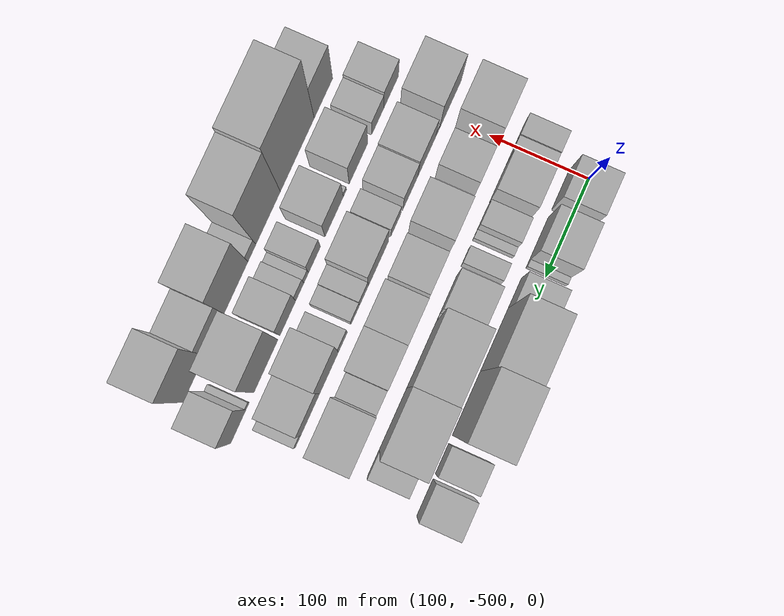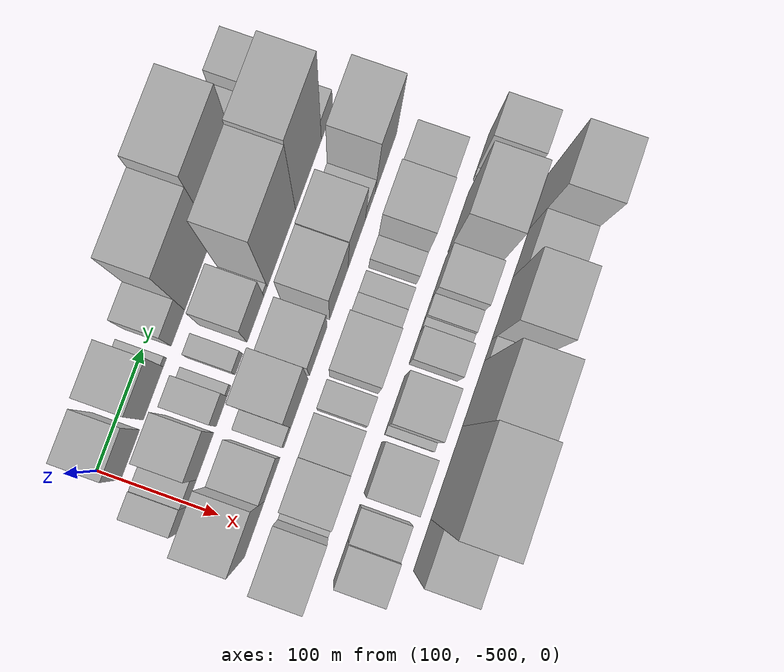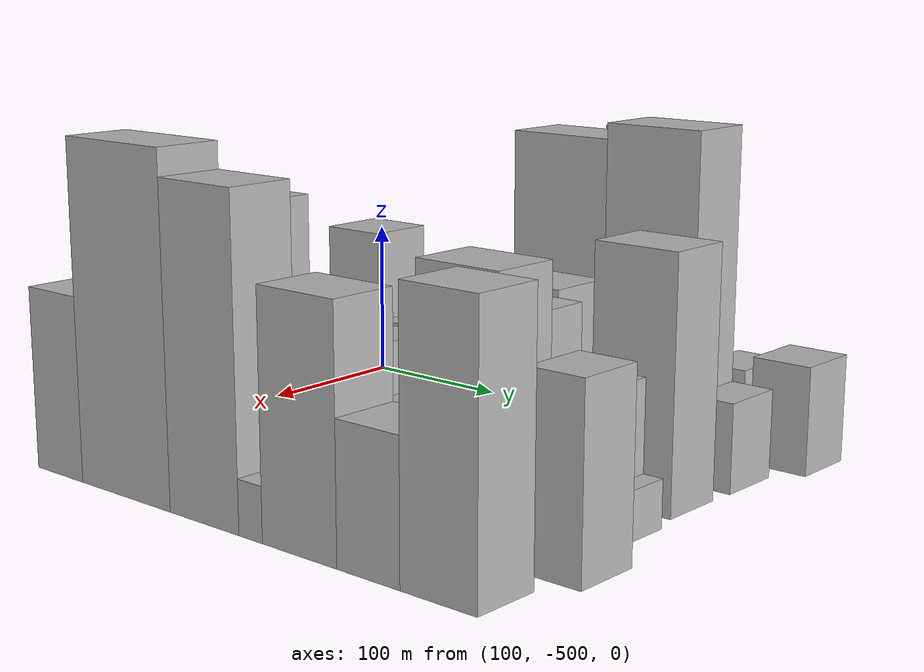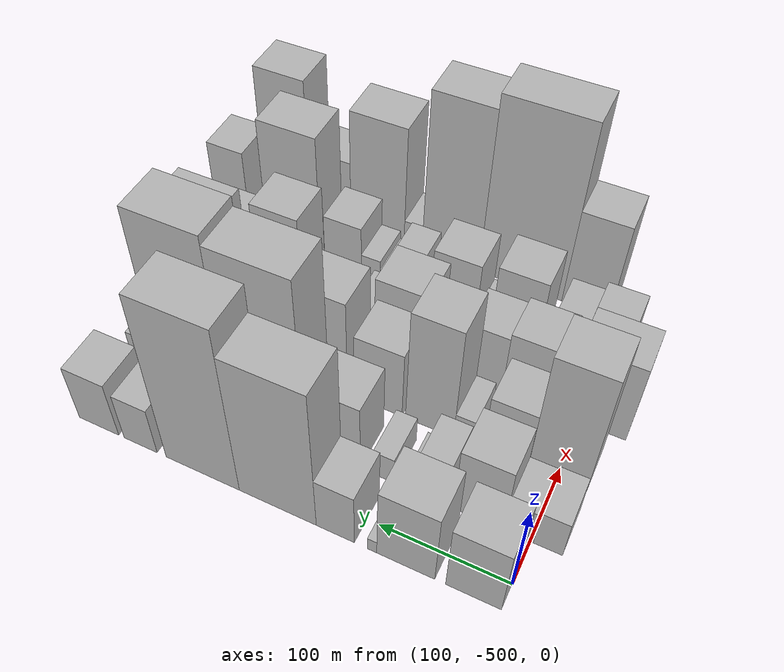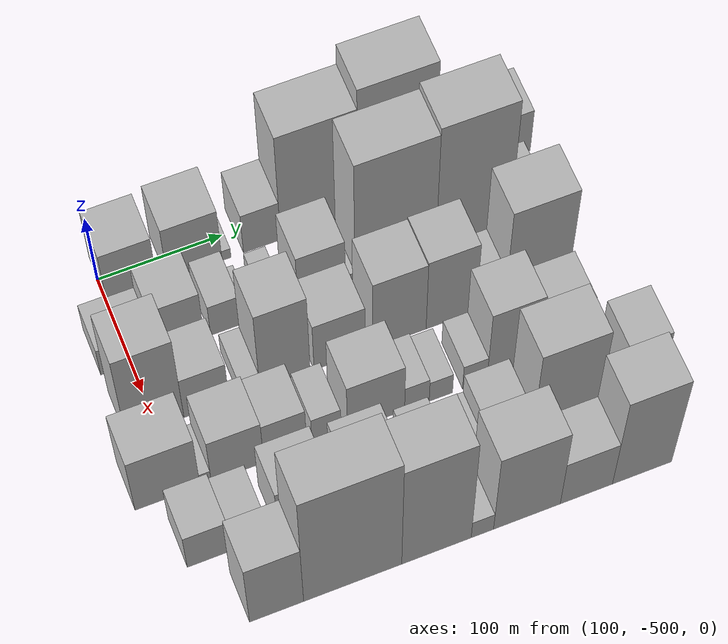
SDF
<sdf version="1.6">
 <world name="default">
  <model name="building_15">
   <static>1</static>
   <pose>100.0000 -479.6449 0 0.000000 0.000000 0.000000</pose>
   <link name="link">
    <pose>0 0 37.50 0 0 0</pose>
    <collision name="collision"><geometry><box><size>40.0000 40.5102 75.0000</size></box></geometry></collision>
    <visual name="visual">
     <cast_shadows>0</cast_shadows>
     <geometry><box><size>40.0000 40.5102 75.0000</size></box></geometry>
     <material>
      <script>
       <uri>model://HANNAS_wall/materials/scripts</uri>
       <uri>model://HANNAS_wall/materials/textures</uri>
       <name>vrc/HANNAS_wall</name>
      </script>
     </material>
    </visual>
   </link>
  </model>
  <model name="building_16">
   <static>1</static>
   <pose>100.0000 -429.4630 0 0.000000 0.000000 0.000000</pose>
   <link name="link">
    <pose>0 0 40.50 0 0 0</pose>
    <collision name="collision"><geometry><box><size>40.0000 43.8536 81.0000</size></box></geometry></collision>
    <visual name="visual">
     <cast_shadows>0</cast_shadows>
     <geometry><box><size>40.0000 43.8536 81.0000</size></box></geometry>
     <material>
      <script>
       <uri>model://HANNAS_wall/materials/scripts</uri>
       <uri>model://HANNAS_wall/materials/textures</uri>
       <name>vrc/HANNAS_wall</name>
      </script>
     </material>
    </visual>
   </link>
  </model>
  <model name="building_17">
   <static>1</static>
   <pose>100.0000 -403.8971 0 0.000000 0.000000 0.000000</pose>
   <link name="link">
    <pose>0 0 7.50 0 0 0</pose>
    <collision name="collision"><geometry><box><size>40.0000 7.2782 15.0000</size></box></geometry></collision>
    <visual name="visual">
     <cast_shadows>0</cast_shadows>
     <geometry><box><size>40.0000 7.2782 15.0000</size></box></geometry>
     <material>
      <script>
       <uri>model://HANNAS_wall/materials/scripts</uri>
       <uri>model://HANNAS_wall/materials/textures</uri>
       <name>vrc/HANNAS_wall</name>
      </script>
     </material>
    </visual>
   </link>
  </model>
  <model name="building_18">
   <static>1</static>
   <pose>100.0000 -375.1844 0 0.000000 0.000000 0.000000</pose>
   <link name="link">
    <pose>0 0 30.00 0 0 0</pose>
    <collision name="collision"><geometry><box><size>40.0000 30.1471 60.0000</size></box></geometry></collision>
    <visual name="visual">
     <cast_shadows>0</cast_shadows>
     <geometry><box><size>40.0000 30.1471 60.0000</size></box></geometry>
     <material>
      <script>
       <uri>model://HANNAS_wall/materials/scripts</uri>
       <uri>model://HANNAS_wall/materials/textures</uri>
       <name>vrc/HANNAS_wall</name>
      </script>
     </material>
    </visual>
   </link>
  </model>
  <model name="building_19">
   <static>1</static>
   <pose>100.0000 -328.5099 0 0.000000 0.000000 0.000000</pose>
   <link name="link">
    <pose>0 0 79.50 0 0 0</pose>
    <collision name="collision"><geometry><box><size>40.0000 63.2020 159.0000</size></box></geometry></collision>
    <visual name="visual">
     <cast_shadows>0</cast_shadows>
     <geometry><box><size>40.0000 63.2020 159.0000</size></box></geometry>
     <material>
      <script>
       <uri>model://HANNAS_wall/materials/scripts</uri>
       <uri>model://HANNAS_wall/materials/textures</uri>
       <name>vrc/HANNAS_wall</name>
      </script>
     </material>
    </visual>
   </link>
  </model>
  <model name="building_20">
   <static>1</static>
   <pose>100.0000 -265.2148 0 0.000000 0.000000 0.000000</pose>
   <link name="link">
    <pose>0 0 93.00 0 0 0</pose>
    <collision name="collision"><geometry><box><size>40.0000 63.3882 186.0000</size></box></geometry></collision>
    <visual name="visual">
     <cast_shadows>0</cast_shadows>
     <geometry><box><size>40.0000 63.3882 186.0000</size></box></geometry>
     <material>
      <script>
       <uri>model://HANNAS_wall/materials/scripts</uri>
       <uri>model://HANNAS_wall/materials/textures</uri>
       <name>vrc/HANNAS_wall</name>
      </script>
     </material>
    </visual>
   </link>
  </model>
  <model name="building_21">
   <static>1</static>
   <pose>100.0000 -210.6596 0 0.000000 0.000000 0.000000</pose>
   <link name="link">
    <pose>0 0 27.00 0 0 0</pose>
    <collision name="collision"><geometry><box><size>40.0000 29.7221 54.0000</size></box></geometry></collision>
    <visual name="visual">
     <cast_shadows>0</cast_shadows>
     <geometry><box><size>40.0000 29.7221 54.0000</size></box></geometry>
     <material>
      <script>
       <uri>model://HANNAS_wall/materials/scripts</uri>
       <uri>model://HANNAS_wall/materials/textures</uri>
       <name>vrc/HANNAS_wall</name>
      </script>
     </material>
    </visual>
   </link>
  </model>
  <model name="building_22">
   <static>1</static>
   <pose>100.0000 -172.5500 0 0.000000 0.000000 0.000000</pose>
   <link name="link">
    <pose>0 0 31.50 0 0 0</pose>
    <collision name="collision"><geometry><box><size>40.0000 36.4971 63.0000</size></box></geometry></collision>
    <visual name="visual">
     <cast_shadows>0</cast_shadows>
     <geometry><box><size>40.0000 36.4971 63.0000</size></box></geometry>
     <material>
      <script>
       <uri>model://HANNAS_wall/materials/scripts</uri>
       <uri>model://HANNAS_wall/materials/textures</uri>
       <name>vrc/HANNAS_wall</name>
      </script>
     </material>
    </visual>
   </link>
  </model>
  <model name="building_62">
   <static>1</static>
   <pose>155.0000 -513.1304 0 0.000000 0.000000 0.000000</pose>
   <link name="link">
    <pose>0 0 21.00 0 0 0</pose>
    <collision name="collision"><geometry><box><size>40.0000 21.3938 42.0000</size></box></geometry></collision>
    <visual name="visual">
     <cast_shadows>0</cast_shadows>
     <geometry><box><size>40.0000 21.3938 42.0000</size></box></geometry>
     <material>
      <script>
       <uri>model://HANNAS_wall/materials/scripts</uri>
       <uri>model://HANNAS_wall/materials/textures</uri>
       <name>vrc/HANNAS_wall</name>
      </script>
     </material>
    </visual>
   </link>
  </model>
  <model name="building_63">
   <static>1</static>
   <pose>155.0000 -491.4696 0 0.000000 0.000000 0.000000</pose>
   <link name="link">
    <pose>0 0 19.50 0 0 0</pose>
    <collision name="collision"><geometry><box><size>40.0000 21.9277 39.0000</size></box></geometry></collision>
    <visual name="visual">
     <cast_shadows>0</cast_shadows>
     <geometry><box><size>40.0000 21.9277 39.0000</size></box></geometry>
     <material>
      <script>
       <uri>model://HANNAS_wall/materials/scripts</uri>
       <uri>model://HANNAS_wall/materials/textures</uri>
       <name>vrc/HANNAS_wall</name>
      </script>
     </material>
    </visual>
   </link>
  </model>
  <model name="building_64">
   <static>1</static>
   <pose>155.0000 -461.3105 0 0.000000 0.000000 0.000000</pose>
   <link name="link">
    <pose>0 0 37.50 0 0 0</pose>
    <collision name="collision"><geometry><box><size>40.0000 38.3906 75.0000</size></box></geometry></collision>
    <visual name="visual">
     <cast_shadows>0</cast_shadows>
     <geometry><box><size>40.0000 38.3906 75.0000</size></box></geometry>
     <material>
      <script>
       <uri>model://HANNAS_wall/materials/scripts</uri>
       <uri>model://HANNAS_wall/materials/textures</uri>
       <name>vrc/HANNAS_wall</name>
      </script>
     </material>
    </visual>
   </link>
  </model>
  <model name="building_65">
   <static>1</static>
   <pose>155.0000 -424.7836 0 0.000000 0.000000 0.000000</pose>
   <link name="link">
    <pose>0 0 24.00 0 0 0</pose>
    <collision name="collision"><geometry><box><size>40.0000 24.6631 48.0000</size></box></geometry></collision>
    <visual name="visual">
     <cast_shadows>0</cast_shadows>
     <geometry><box><size>40.0000 24.6631 48.0000</size></box></geometry>
     <material>
      <script>
       <uri>model://HANNAS_wall/materials/scripts</uri>
       <uri>model://HANNAS_wall/materials/textures</uri>
       <name>vrc/HANNAS_wall</name>
      </script>
     </material>
    </visual>
   </link>
  </model>
  <model name="building_66">
   <static>1</static>
   <pose>155.0000 -408.0593 0 0.000000 0.000000 0.000000</pose>
   <link name="link">
    <pose>0 0 9.00 0 0 0</pose>
    <collision name="collision"><geometry><box><size>40.0000 8.7856 18.0000</size></box></geometry></collision>
    <visual name="visual">
     <cast_shadows>0</cast_shadows>
     <geometry><box><size>40.0000 8.7856 18.0000</size></box></geometry>
     <material>
      <script>
       <uri>model://HANNAS_wall/materials/scripts</uri>
       <uri>model://HANNAS_wall/materials/textures</uri>
       <name>vrc/HANNAS_wall</name>
      </script>
     </material>
    </visual>
   </link>
  </model>
  <model name="building_67">
   <static>1</static>
   <pose>155.0000 -386.0575 0 0.000000 0.000000 0.000000</pose>
   <link name="link">
    <pose>0 0 15.00 0 0 0</pose>
    <collision name="collision"><geometry><box><size>40.0000 17.2179 30.0000</size></box></geometry></collision>
    <visual name="visual">
     <cast_shadows>0</cast_shadows>
     <geometry><box><size>40.0000 17.2179 30.0000</size></box></geometry>
     <material>
      <script>
       <uri>model://HANNAS_wall/materials/scripts</uri>
       <uri>model://HANNAS_wall/materials/textures</uri>
       <name>vrc/HANNAS_wall</name>
      </script>
     </material>
    </visual>
   </link>
  </model>
  <model name="building_68">
   <static>1</static>
   <pose>155.0000 -348.2010 0 0.000000 0.000000 0.000000</pose>
   <link name="link">
    <pose>0 0 37.50 0 0 0</pose>
    <collision name="collision"><geometry><box><size>40.0000 38.4952 75.0000</size></box></geometry></collision>
    <visual name="visual">
     <cast_shadows>0</cast_shadows>
     <geometry><box><size>40.0000 38.4952 75.0000</size></box></geometry>
     <material>
      <script>
       <uri>model://HANNAS_wall/materials/scripts</uri>
       <uri>model://HANNAS_wall/materials/textures</uri>
       <name>vrc/HANNAS_wall</name>
      </script>
     </material>
    </visual>
   </link>
  </model>
  <model name="building_69">
   <static>1</static>
   <pose>155.0000 -325.0655 0 0.000000 0.000000 0.000000</pose>
   <link name="link">
    <pose>0 0 9.00 0 0 0</pose>
    <collision name="collision"><geometry><box><size>40.0000 7.7756 18.0000</size></box></geometry></collision>
    <visual name="visual">
     <cast_shadows>0</cast_shadows>
     <geometry><box><size>40.0000 7.7756 18.0000</size></box></geometry>
     <material>
      <script>
       <uri>model://HANNAS_wall/materials/scripts</uri>
       <uri>model://HANNAS_wall/materials/textures</uri>
       <name>vrc/HANNAS_wall</name>
      </script>
     </material>
    </visual>
   </link>
  </model>
  <model name="building_70">
   <static>1</static>
   <pose>155.0000 -288.4502 0 0.000000 0.000000 0.000000</pose>
   <link name="link">
    <pose>0 0 93.00 0 0 0</pose>
    <collision name="collision"><geometry><box><size>40.0000 65.4550 186.0000</size></box></geometry></collision>
    <visual name="visual">
     <cast_shadows>0</cast_shadows>
     <geometry><box><size>40.0000 65.4550 186.0000</size></box></geometry>
     <material>
      <script>
       <uri>model://HANNAS_wall/materials/scripts</uri>
       <uri>model://HANNAS_wall/materials/textures</uri>
       <name>vrc/HANNAS_wall</name>
      </script>
     </material>
    </visual>
   </link>
  </model>
  <model name="building_71">
   <static>1</static>
   <pose>155.0000 -225.3385 0 0.000000 0.000000 0.000000</pose>
   <link name="link">
    <pose>0 0 97.50 0 0 0</pose>
    <collision name="collision"><geometry><box><size>40.0000 60.7685 195.0000</size></box></geometry></collision>
    <visual name="visual">
     <cast_shadows>0</cast_shadows>
     <geometry><box><size>40.0000 60.7685 195.0000</size></box></geometry>
     <material>
      <script>
       <uri>model://HANNAS_wall/materials/scripts</uri>
       <uri>model://HANNAS_wall/materials/textures</uri>
       <name>vrc/HANNAS_wall</name>
      </script>
     </material>
    </visual>
   </link>
  </model>
  <model name="building_72">
   <static>1</static>
   <pose>155.0000 -181.8668 0 0.000000 0.000000 0.000000</pose>
   <link name="link">
    <pose>0 0 25.50 0 0 0</pose>
    <collision name="collision"><geometry><box><size>40.0000 26.1749 51.0000</size></box></geometry></collision>
    <visual name="visual">
     <cast_shadows>0</cast_shadows>
     <geometry><box><size>40.0000 26.1749 51.0000</size></box></geometry>
     <material>
      <script>
       <uri>model://HANNAS_wall/materials/scripts</uri>
       <uri>model://HANNAS_wall/materials/textures</uri>
       <name>vrc/HANNAS_wall</name>
      </script>
     </material>
    </visual>
   </link>
  </model>
  <model name="building_115">
   <static>1</static>
   <pose>210.0000 -500.8739 0 0.000000 0.000000 0.000000</pose>
   <link name="link">
    <pose>0 0 67.50 0 0 0</pose>
    <collision name="collision"><geometry><box><size>40.0000 44.9922 135.0000</size></box></geometry></collision>
    <visual name="visual">
     <cast_shadows>0</cast_shadows>
     <geometry><box><size>40.0000 44.9922 135.0000</size></box></geometry>
     <material>
      <script>
       <uri>model://HANNAS_wall/materials/scripts</uri>
       <uri>model://HANNAS_wall/materials/textures</uri>
       <name>vrc/HANNAS_wall</name>
      </script>
     </material>
    </visual>
   </link>
  </model>
  <model name="building_116">
   <static>1</static>
   <pose>210.0000 -460.6158 0 0.000000 0.000000 0.000000</pose>
   <link name="link">
    <pose>0 0 33.00 0 0 0</pose>
    <collision name="collision"><geometry><box><size>40.0000 35.5241 66.0000</size></box></geometry></collision>
    <visual name="visual">
     <cast_shadows>0</cast_shadows>
     <geometry><box><size>40.0000 35.5241 66.0000</size></box></geometry>
     <material>
      <script>
       <uri>model://HANNAS_wall/materials/scripts</uri>
       <uri>model://HANNAS_wall/materials/textures</uri>
       <name>vrc/HANNAS_wall</name>
      </script>
     </material>
    </visual>
   </link>
  </model>
  <model name="building_117">
   <static>1</static>
   <pose>210.0000 -426.8017 0 0.000000 0.000000 0.000000</pose>
   <link name="link">
    <pose>0 0 15.00 0 0 0</pose>
    <collision name="collision"><geometry><box><size>40.0000 16.1040 30.0000</size></box></geometry></collision>
    <visual name="visual">
     <cast_shadows>0</cast_shadows>
     <geometry><box><size>40.0000 16.1040 30.0000</size></box></geometry>
     <material>
      <script>
       <uri>model://HANNAS_wall/materials/scripts</uri>
       <uri>model://HANNAS_wall/materials/textures</uri>
       <name>vrc/HANNAS_wall</name>
      </script>
     </material>
    </visual>
   </link>
  </model>
  <model name="building_118">
   <static>1</static>
   <pose>210.0000 -398.7886 0 0.000000 0.000000 0.000000</pose>
   <link name="link">
    <pose>0 0 63.00 0 0 0</pose>
    <collision name="collision"><geometry><box><size>40.0000 39.9221 126.0000</size></box></geometry></collision>
    <visual name="visual">
     <cast_shadows>0</cast_shadows>
     <geometry><box><size>40.0000 39.9221 126.0000</size></box></geometry>
     <material>
      <script>
       <uri>model://HANNAS_wall/materials/scripts</uri>
       <uri>model://HANNAS_wall/materials/textures</uri>
       <name>vrc/HANNAS_wall</name>
      </script>
     </material>
    </visual>
   </link>
  </model>
  <model name="building_119">
   <static>1</static>
   <pose>210.0000 -355.4312 0 0.000000 0.000000 0.000000</pose>
   <link name="link">
    <pose>0 0 37.50 0 0 0</pose>
    <collision name="collision"><geometry><box><size>40.0000 40.7927 75.0000</size></box></geometry></collision>
    <visual name="visual">
     <cast_shadows>0</cast_shadows>
     <geometry><box><size>40.0000 40.7927 75.0000</size></box></geometry>
     <material>
      <script>
       <uri>model://HANNAS_wall/materials/scripts</uri>
       <uri>model://HANNAS_wall/materials/textures</uri>
       <name>vrc/HANNAS_wall</name>
      </script>
     </material>
    </visual>
   </link>
  </model>
  <model name="building_120">
   <static>1</static>
   <pose>210.0000 -307.5753 0 0.000000 0.000000 0.000000</pose>
   <link name="link">
    <pose>0 0 54.00 0 0 0</pose>
    <collision name="collision"><geometry><box><size>40.0000 42.9193 108.0000</size></box></geometry></collision>
    <visual name="visual">
     <cast_shadows>0</cast_shadows>
     <geometry><box><size>40.0000 42.9193 108.0000</size></box></geometry>
     <material>
      <script>
       <uri>model://HANNAS_wall/materials/scripts</uri>
       <uri>model://HANNAS_wall/materials/textures</uri>
       <name>vrc/HANNAS_wall</name>
      </script>
     </material>
    </visual>
   </link>
  </model>
  <model name="building_121">
   <static>1</static>
   <pose>210.0000 -265.8573 0 0.000000 0.000000 0.000000</pose>
   <link name="link">
    <pose>0 0 55.50 0 0 0</pose>
    <collision name="collision"><geometry><box><size>40.0000 40.5167 111.0000</size></box></geometry></collision>
    <visual name="visual">
     <cast_shadows>0</cast_shadows>
     <geometry><box><size>40.0000 40.5167 111.0000</size></box></geometry>
     <material>
      <script>
       <uri>model://HANNAS_wall/materials/scripts</uri>
       <uri>model://HANNAS_wall/materials/textures</uri>
       <name>vrc/HANNAS_wall</name>
      </script>
     </material>
    </visual>
   </link>
  </model>
  <model name="building_122">
   <static>1</static>
   <pose>210.0000 -233.8029 0 0.000000 0.000000 0.000000</pose>
   <link name="link">
    <pose>0 0 22.50 0 0 0</pose>
    <collision name="collision"><geometry><box><size>40.0000 23.5922 45.0000</size></box></geometry></collision>
    <visual name="visual">
     <cast_shadows>0</cast_shadows>
     <geometry><box><size>40.0000 23.5922 45.0000</size></box></geometry>
     <material>
      <script>
       <uri>model://HANNAS_wall/materials/scripts</uri>
       <uri>model://HANNAS_wall/materials/textures</uri>
       <name>vrc/HANNAS_wall</name>
      </script>
     </material>
    </visual>
   </link>
  </model>
  <model name="building_123">
   <static>1</static>
   <pose>210.0000 -195.9886 0 0.000000 0.000000 0.000000</pose>
   <link name="link">
    <pose>0 0 70.50 0 0 0</pose>
    <collision name="collision"><geometry><box><size>40.0000 52.0364 141.0000</size></box></geometry></collision>
    <visual name="visual">
     <cast_shadows>0</cast_shadows>
     <geometry><box><size>40.0000 52.0364 141.0000</size></box></geometry>
     <material>
      <script>
       <uri>model://HANNAS_wall/materials/scripts</uri>
       <uri>model://HANNAS_wall/materials/textures</uri>
       <name>vrc/HANNAS_wall</name>
      </script>
     </material>
    </visual>
   </link>
  </model>
  <model name="building_165">
   <static>1</static>
   <pose>265.0000 -511.1517 0 0.000000 0.000000 0.000000</pose>
   <link name="link">
    <pose>0 0 43.50 0 0 0</pose>
    <collision name="collision"><geometry><box><size>40.0000 50.1824 87.0000</size></box></geometry></collision>
    <visual name="visual">
     <cast_shadows>0</cast_shadows>
     <geometry><box><size>40.0000 50.1824 87.0000</size></box></geometry>
     <material>
      <script>
       <uri>model://HANNAS_wall/materials/scripts</uri>
       <uri>model://HANNAS_wall/materials/textures</uri>
       <name>vrc/HANNAS_wall</name>
      </script>
     </material>
    </visual>
   </link>
  </model>
  <model name="building_166">
   <static>1</static>
   <pose>265.0000 -481.7135 0 0.000000 0.000000 0.000000</pose>
   <link name="link">
    <pose>0 0 10.50 0 0 0</pose>
    <collision name="collision"><geometry><box><size>40.0000 8.6941 21.0000</size></box></geometry></collision>
    <visual name="visual">
     <cast_shadows>0</cast_shadows>
     <geometry><box><size>40.0000 8.6941 21.0000</size></box></geometry>
     <material>
      <script>
       <uri>model://HANNAS_wall/materials/scripts</uri>
       <uri>model://HANNAS_wall/materials/textures</uri>
       <name>vrc/HANNAS_wall</name>
      </script>
     </material>
    </visual>
   </link>
  </model>
  <model name="building_167">
   <static>1</static>
   <pose>265.0000 -456.9520 0 0.000000 0.000000 0.000000</pose>
   <link name="link">
    <pose>0 0 36.00 0 0 0</pose>
    <collision name="collision"><geometry><box><size>40.0000 40.8289 72.0000</size></box></geometry></collision>
    <visual name="visual">
     <cast_shadows>0</cast_shadows>
     <geometry><box><size>40.0000 40.8289 72.0000</size></box></geometry>
     <material>
      <script>
       <uri>model://HANNAS_wall/materials/scripts</uri>
       <uri>model://HANNAS_wall/materials/textures</uri>
       <name>vrc/HANNAS_wall</name>
      </script>
     </material>
    </visual>
   </link>
  </model>
  <model name="building_168">
   <static>1</static>
   <pose>265.0000 -419.7354 0 0.000000 0.000000 0.000000</pose>
   <link name="link">
    <pose>0 0 33.00 0 0 0</pose>
    <collision name="collision"><geometry><box><size>40.0000 33.6044 66.0000</size></box></geometry></collision>
    <visual name="visual">
     <cast_shadows>0</cast_shadows>
     <geometry><box><size>40.0000 33.6044 66.0000</size></box></geometry>
     <material>
      <script>
       <uri>model://HANNAS_wall/materials/scripts</uri>
       <uri>model://HANNAS_wall/materials/textures</uri>
       <name>vrc/HANNAS_wall</name>
      </script>
     </material>
    </visual>
   </link>
  </model>
  <model name="building_169">
   <static>1</static>
   <pose>265.0000 -387.5065 0 0.000000 0.000000 0.000000</pose>
   <link name="link">
    <pose>0 0 22.50 0 0 0</pose>
    <collision name="collision"><geometry><box><size>40.0000 22.8533 45.0000</size></box></geometry></collision>
    <visual name="visual">
     <cast_shadows>0</cast_shadows>
     <geometry><box><size>40.0000 22.8533 45.0000</size></box></geometry>
     <material>
      <script>
       <uri>model://HANNAS_wall/materials/scripts</uri>
       <uri>model://HANNAS_wall/materials/textures</uri>
       <name>vrc/HANNAS_wall</name>
      </script>
     </material>
    </visual>
   </link>
  </model>
  <model name="building_170">
   <static>1</static>
   <pose>265.0000 -348.4466 0 0.000000 0.000000 0.000000</pose>
   <link name="link">
    <pose>0 0 39.00 0 0 0</pose>
    <collision name="collision"><geometry><box><size>40.0000 45.2665 78.0000</size></box></geometry></collision>
    <visual name="visual">
     <cast_shadows>0</cast_shadows>
     <geometry><box><size>40.0000 45.2665 78.0000</size></box></geometry>
     <material>
      <script>
       <uri>model://HANNAS_wall/materials/scripts</uri>
       <uri>model://HANNAS_wall/materials/textures</uri>
       <name>vrc/HANNAS_wall</name>
      </script>
     </material>
    </visual>
   </link>
  </model>
  <model name="building_171">
   <static>1</static>
   <pose>265.0000 -316.0258 0 0.000000 0.000000 0.000000</pose>
   <link name="link">
    <pose>0 0 19.50 0 0 0</pose>
    <collision name="collision"><geometry><box><size>40.0000 19.5751 39.0000</size></box></geometry></collision>
    <visual name="visual">
     <cast_shadows>0</cast_shadows>
     <geometry><box><size>40.0000 19.5751 39.0000</size></box></geometry>
     <material>
      <script>
       <uri>model://HANNAS_wall/materials/scripts</uri>
       <uri>model://HANNAS_wall/materials/textures</uri>
       <name>vrc/HANNAS_wall</name>
      </script>
     </material>
    </visual>
   </link>
  </model>
  <model name="building_172">
   <static>1</static>
   <pose>265.0000 -296.9270 0 0.000000 0.000000 0.000000</pose>
   <link name="link">
    <pose>0 0 16.50 0 0 0</pose>
    <collision name="collision"><geometry><box><size>40.0000 18.6226 33.0000</size></box></geometry></collision>
    <visual name="visual">
     <cast_shadows>0</cast_shadows>
     <geometry><box><size>40.0000 18.6226 33.0000</size></box></geometry>
     <material>
      <script>
       <uri>model://HANNAS_wall/materials/scripts</uri>
       <uri>model://HANNAS_wall/materials/textures</uri>
       <name>vrc/HANNAS_wall</name>
      </script>
     </material>
    </visual>
   </link>
  </model>
  <model name="building_173">
   <static>1</static>
   <pose>265.0000 -269.7869 0 0.000000 0.000000 0.000000</pose>
   <link name="link">
    <pose>0 0 19.50 0 0 0</pose>
    <collision name="collision"><geometry><box><size>40.0000 19.6577 39.0000</size></box></geometry></collision>
    <visual name="visual">
     <cast_shadows>0</cast_shadows>
     <geometry><box><size>40.0000 19.6577 39.0000</size></box></geometry>
     <material>
      <script>
       <uri>model://HANNAS_wall/materials/scripts</uri>
       <uri>model://HANNAS_wall/materials/textures</uri>
       <name>vrc/HANNAS_wall</name>
      </script>
     </material>
    </visual>
   </link>
  </model>
  <model name="building_174">
   <static>1</static>
   <pose>265.0000 -239.1069 0 0.000000 0.000000 0.000000</pose>
   <link name="link">
    <pose>0 0 55.50 0 0 0</pose>
    <collision name="collision"><geometry><box><size>40.0000 41.7022 111.0000</size></box></geometry></collision>
    <visual name="visual">
     <cast_shadows>0</cast_shadows>
     <geometry><box><size>40.0000 41.7022 111.0000</size></box></geometry>
     <material>
      <script>
       <uri>model://HANNAS_wall/materials/scripts</uri>
       <uri>model://HANNAS_wall/materials/textures</uri>
       <name>vrc/HANNAS_wall</name>
      </script>
     </material>
    </visual>
   </link>
  </model>
  <model name="building_175">
   <static>1</static>
   <pose>265.0000 -197.7909 0 0.000000 0.000000 0.000000</pose>
   <link name="link">
    <pose>0 0 39.00 0 0 0</pose>
    <collision name="collision"><geometry><box><size>40.0000 40.9298 78.0000</size></box></geometry></collision>
    <visual name="visual">
     <cast_shadows>0</cast_shadows>
     <geometry><box><size>40.0000 40.9298 78.0000</size></box></geometry>
     <material>
      <script>
       <uri>model://HANNAS_wall/materials/scripts</uri>
       <uri>model://HANNAS_wall/materials/textures</uri>
       <name>vrc/HANNAS_wall</name>
      </script>
     </material>
    </visual>
   </link>
  </model>
  <model name="building_176">
   <static>1</static>
   <pose>265.0000 -171.2518 0 0.000000 0.000000 0.000000</pose>
   <link name="link">
    <pose>0 0 13.50 0 0 0</pose>
    <collision name="collision"><geometry><box><size>40.0000 12.1485 27.0000</size></box></geometry></collision>
    <visual name="visual">
     <cast_shadows>0</cast_shadows>
     <geometry><box><size>40.0000 12.1485 27.0000</size></box></geometry>
     <material>
      <script>
       <uri>model://HANNAS_wall/materials/scripts</uri>
       <uri>model://HANNAS_wall/materials/textures</uri>
       <name>vrc/HANNAS_wall</name>
      </script>
     </material>
    </visual>
   </link>
  </model>
  <model name="building_215">
   <static>1</static>
   <pose>320.0000 -499.6707 0 0.000000 0.000000 0.000000</pose>
   <link name="link">
    <pose>0 0 28.50 0 0 0</pose>
    <collision name="collision"><geometry><box><size>40.0000 33.0061 57.0000</size></box></geometry></collision>
    <visual name="visual">
     <cast_shadows>0</cast_shadows>
     <geometry><box><size>40.0000 33.0061 57.0000</size></box></geometry>
     <material>
      <script>
       <uri>model://HANNAS_wall/materials/scripts</uri>
       <uri>model://HANNAS_wall/materials/textures</uri>
       <name>vrc/HANNAS_wall</name>
      </script>
     </material>
    </visual>
   </link>
  </model>
  <model name="building_216">
   <static>1</static>
   <pose>320.0000 -469.3909 0 0.000000 0.000000 0.000000</pose>
   <link name="link">
    <pose>0 0 24.00 0 0 0</pose>
    <collision name="collision"><geometry><box><size>40.0000 27.5534 48.0000</size></box></geometry></collision>
    <visual name="visual">
     <cast_shadows>0</cast_shadows>
     <geometry><box><size>40.0000 27.5534 48.0000</size></box></geometry>
     <material>
      <script>
       <uri>model://HANNAS_wall/materials/scripts</uri>
       <uri>model://HANNAS_wall/materials/textures</uri>
       <name>vrc/HANNAS_wall</name>
      </script>
     </material>
    </visual>
   </link>
  </model>
  <model name="building_217">
   <static>1</static>
   <pose>320.0000 -425.9164 0 0.000000 0.000000 0.000000</pose>
   <link name="link">
    <pose>0 0 37.50 0 0 0</pose>
    <collision name="collision"><geometry><box><size>40.0000 41.3956 75.0000</size></box></geometry></collision>
    <visual name="visual">
     <cast_shadows>0</cast_shadows>
     <geometry><box><size>40.0000 41.3956 75.0000</size></box></geometry>
     <material>
      <script>
       <uri>model://HANNAS_wall/materials/scripts</uri>
       <uri>model://HANNAS_wall/materials/textures</uri>
       <name>vrc/HANNAS_wall</name>
      </script>
     </material>
    </visual>
   </link>
  </model>
  <model name="building_218">
   <static>1</static>
   <pose>320.0000 -395.5539 0 0.000000 0.000000 0.000000</pose>
   <link name="link">
    <pose>0 0 7.50 0 0 0</pose>
    <collision name="collision"><geometry><box><size>40.0000 7.3294 15.0000</size></box></geometry></collision>
    <visual name="visual">
     <cast_shadows>0</cast_shadows>
     <geometry><box><size>40.0000 7.3294 15.0000</size></box></geometry>
     <material>
      <script>
       <uri>model://HANNAS_wall/materials/scripts</uri>
       <uri>model://HANNAS_wall/materials/textures</uri>
       <name>vrc/HANNAS_wall</name>
      </script>
     </material>
    </visual>
   </link>
  </model>
  <model name="building_219">
   <static>1</static>
   <pose>320.0000 -371.5532 0 0.000000 0.000000 0.000000</pose>
   <link name="link">
    <pose>0 0 34.50 0 0 0</pose>
    <collision name="collision"><geometry><box><size>40.0000 40.6720 69.0000</size></box></geometry></collision>
    <visual name="visual">
     <cast_shadows>0</cast_shadows>
     <geometry><box><size>40.0000 40.6720 69.0000</size></box></geometry>
     <material>
      <script>
       <uri>model://HANNAS_wall/materials/scripts</uri>
       <uri>model://HANNAS_wall/materials/textures</uri>
       <name>vrc/HANNAS_wall</name>
      </script>
     </material>
    </visual>
   </link>
  </model>
  <model name="building_220">
   <static>1</static>
   <pose>320.0000 -327.9449 0 0.000000 0.000000 0.000000</pose>
   <link name="link">
    <pose>0 0 24.00 0 0 0</pose>
    <collision name="collision"><geometry><box><size>40.0000 26.5446 48.0000</size></box></geometry></collision>
    <visual name="visual">
     <cast_shadows>0</cast_shadows>
     <geometry><box><size>40.0000 26.5446 48.0000</size></box></geometry>
     <material>
      <script>
       <uri>model://HANNAS_wall/materials/scripts</uri>
       <uri>model://HANNAS_wall/materials/textures</uri>
       <name>vrc/HANNAS_wall</name>
      </script>
     </material>
    </visual>
   </link>
  </model>
  <model name="building_221">
   <static>1</static>
   <pose>320.0000 -309.5009 0 0.000000 0.000000 0.000000</pose>
   <link name="link">
    <pose>0 0 12.00 0 0 0</pose>
    <collision name="collision"><geometry><box><size>40.0000 10.3433 24.0000</size></box></geometry></collision>
    <visual name="visual">
     <cast_shadows>0</cast_shadows>
     <geometry><box><size>40.0000 10.3433 24.0000</size></box></geometry>
     <material>
      <script>
       <uri>model://HANNAS_wall/materials/scripts</uri>
       <uri>model://HANNAS_wall/materials/textures</uri>
       <name>vrc/HANNAS_wall</name>
      </script>
     </material>
    </visual>
   </link>
  </model>
  <model name="building_222">
   <static>1</static>
   <pose>320.0000 -295.4226 0 0.000000 0.000000 0.000000</pose>
   <link name="link">
    <pose>0 0 16.50 0 0 0</pose>
    <collision name="collision"><geometry><box><size>40.0000 17.8132 33.0000</size></box></geometry></collision>
    <visual name="visual">
     <cast_shadows>0</cast_shadows>
     <geometry><box><size>40.0000 17.8132 33.0000</size></box></geometry>
     <material>
      <script>
       <uri>model://HANNAS_wall/materials/scripts</uri>
       <uri>model://HANNAS_wall/materials/textures</uri>
       <name>vrc/HANNAS_wall</name>
      </script>
     </material>
    </visual>
   </link>
  </model>
  <model name="building_223">
   <static>1</static>
   <pose>320.0000 -269.0381 0 0.000000 0.000000 0.000000</pose>
   <link name="link">
    <pose>0 0 31.50 0 0 0</pose>
    <collision name="collision"><geometry><box><size>40.0000 34.9559 63.0000</size></box></geometry></collision>
    <visual name="visual">
     <cast_shadows>0</cast_shadows>
     <geometry><box><size>40.0000 34.9559 63.0000</size></box></geometry>
     <material>
      <script>
       <uri>model://HANNAS_wall/materials/scripts</uri>
       <uri>model://HANNAS_wall/materials/textures</uri>
       <name>vrc/HANNAS_wall</name>
      </script>
     </material>
    </visual>
   </link>
  </model>
  <model name="building_224">
   <static>1</static>
   <pose>320.0000 -221.3047 0 0.000000 0.000000 0.000000</pose>
   <link name="link">
    <pose>0 0 72.00 0 0 0</pose>
    <collision name="collision"><geometry><box><size>40.0000 52.5107 144.0000</size></box></geometry></collision>
    <visual name="visual">
     <cast_shadows>0</cast_shadows>
     <geometry><box><size>40.0000 52.5107 144.0000</size></box></geometry>
     <material>
      <script>
       <uri>model://HANNAS_wall/materials/scripts</uri>
       <uri>model://HANNAS_wall/materials/textures</uri>
       <name>vrc/HANNAS_wall</name>
      </script>
     </material>
    </visual>
   </link>
  </model>
  <model name="building_225">
   <static>1</static>
   <pose>320.0000 -181.5599 0 0.000000 0.000000 0.000000</pose>
   <link name="link">
    <pose>0 0 7.50 0 0 0</pose>
    <collision name="collision"><geometry><box><size>40.0000 6.9789 15.0000</size></box></geometry></collision>
    <visual name="visual">
     <cast_shadows>0</cast_shadows>
     <geometry><box><size>40.0000 6.9789 15.0000</size></box></geometry>
     <material>
      <script>
       <uri>model://HANNAS_wall/materials/scripts</uri>
       <uri>model://HANNAS_wall/materials/textures</uri>
       <name>vrc/HANNAS_wall</name>
      </script>
     </material>
    </visual>
   </link>
  </model>
  <model name="building_226">
   <static>1</static>
   <pose>320.0000 -161.2256 0 0.000000 0.000000 0.000000</pose>
   <link name="link">
    <pose>0 0 51.00 0 0 0</pose>
    <collision name="collision"><geometry><box><size>40.0000 33.6898 102.0000</size></box></geometry></collision>
    <visual name="visual">
     <cast_shadows>0</cast_shadows>
     <geometry><box><size>40.0000 33.6898 102.0000</size></box></geometry>
     <material>
      <script>
       <uri>model://HANNAS_wall/materials/scripts</uri>
       <uri>model://HANNAS_wall/materials/textures</uri>
       <name>vrc/HANNAS_wall</name>
      </script>
     </material>
    </visual>
   </link>
  </model>
  <model name="building_262">
   <static>1</static>
   <pose>375.0000 -468.7132 0 0.000000 0.000000 0.000000</pose>
   <link name="link">
    <pose>0 0 52.50 0 0 0</pose>
    <collision name="collision"><geometry><box><size>40.0000 41.1638 105.0000</size></box></geometry></collision>
    <visual name="visual">
     <cast_shadows>0</cast_shadows>
     <geometry><box><size>40.0000 41.1638 105.0000</size></box></geometry>
     <material>
      <script>
       <uri>model://HANNAS_wall/materials/scripts</uri>
       <uri>model://HANNAS_wall/materials/textures</uri>
       <name>vrc/HANNAS_wall</name>
      </script>
     </material>
    </visual>
   </link>
  </model>
  <model name="building_263">
   <static>1</static>
   <pose>375.0000 -410.4360 0 0.000000 0.000000 0.000000</pose>
   <link name="link">
    <pose>0 0 96.00 0 0 0</pose>
    <collision name="collision"><geometry><box><size>40.0000 75.3907 192.0000</size></box></geometry></collision>
    <visual name="visual">
     <cast_shadows>0</cast_shadows>
     <geometry><box><size>40.0000 75.3907 192.0000</size></box></geometry>
     <material>
      <script>
       <uri>model://HANNAS_wall/materials/scripts</uri>
       <uri>model://HANNAS_wall/materials/textures</uri>
       <name>vrc/HANNAS_wall</name>
      </script>
     </material>
    </visual>
   </link>
  </model>
  <model name="building_264">
   <static>1</static>
   <pose>375.0000 -345.7568 0 0.000000 0.000000 0.000000</pose>
   <link name="link">
    <pose>0 0 88.50 0 0 0</pose>
    <collision name="collision"><geometry><box><size>40.0000 53.9678 177.0000</size></box></geometry></collision>
    <visual name="visual">
     <cast_shadows>0</cast_shadows>
     <geometry><box><size>40.0000 53.9678 177.0000</size></box></geometry>
     <material>
      <script>
       <uri>model://HANNAS_wall/materials/scripts</uri>
       <uri>model://HANNAS_wall/materials/textures</uri>
       <name>vrc/HANNAS_wall</name>
      </script>
     </material>
    </visual>
   </link>
  </model>
  <model name="building_265">
   <static>1</static>
   <pose>375.0000 -310.0453 0 0.000000 0.000000 0.000000</pose>
   <link name="link">
    <pose>0 0 15.00 0 0 0</pose>
    <collision name="collision"><geometry><box><size>40.0000 17.4552 30.0000</size></box></geometry></collision>
    <visual name="visual">
     <cast_shadows>0</cast_shadows>
     <geometry><box><size>40.0000 17.4552 30.0000</size></box></geometry>
     <material>
      <script>
       <uri>model://HANNAS_wall/materials/scripts</uri>
       <uri>model://HANNAS_wall/materials/textures</uri>
       <name>vrc/HANNAS_wall</name>
      </script>
     </material>
    </visual>
   </link>
  </model>
  <model name="building_266">
   <static>1</static>
   <pose>375.0000 -275.0609 0 0.000000 0.000000 0.000000</pose>
   <link name="link">
    <pose>0 0 66.00 0 0 0</pose>
    <collision name="collision"><geometry><box><size>40.0000 52.5134 132.0000</size></box></geometry></collision>
    <visual name="visual">
     <cast_shadows>0</cast_shadows>
     <geometry><box><size>40.0000 52.5134 132.0000</size></box></geometry>
     <material>
      <script>
       <uri>model://HANNAS_wall/materials/scripts</uri>
       <uri>model://HANNAS_wall/materials/textures</uri>
       <name>vrc/HANNAS_wall</name>
      </script>
     </material>
    </visual>
   </link>
  </model>
  <model name="building_267">
   <static>1</static>
   <pose>375.0000 -228.1510 0 0.000000 0.000000 0.000000</pose>
   <link name="link">
    <pose>0 0 37.50 0 0 0</pose>
    <collision name="collision"><geometry><box><size>40.0000 41.3065 75.0000</size></box></geometry></collision>
    <visual name="visual">
     <cast_shadows>0</cast_shadows>
     <geometry><box><size>40.0000 41.3065 75.0000</size></box></geometry>
     <material>
      <script>
       <uri>model://HANNAS_wall/materials/scripts</uri>
       <uri>model://HANNAS_wall/materials/textures</uri>
       <name>vrc/HANNAS_wall</name>
      </script>
     </material>
    </visual>
   </link>
  </model>
  <model name="building_268">
   <static>1</static>
   <pose>375.0000 -183.9173 0 0.000000 0.000000 0.000000</pose>
   <link name="link">
    <pose>0 0 73.50 0 0 0</pose>
    <collision name="collision"><geometry><box><size>40.0000 47.1610 147.0000</size></box></geometry></collision>
    <visual name="visual">
     <cast_shadows>0</cast_shadows>
     <geometry><box><size>40.0000 47.1610 147.0000</size></box></geometry>
     <material>
      <script>
       <uri>model://HANNAS_wall/materials/scripts</uri>
       <uri>model://HANNAS_wall/materials/textures</uri>
       <name>vrc/HANNAS_wall</name>
      </script>
     </material>
    </visual>
   </link>
  </model>
 </world>
</sdf>
